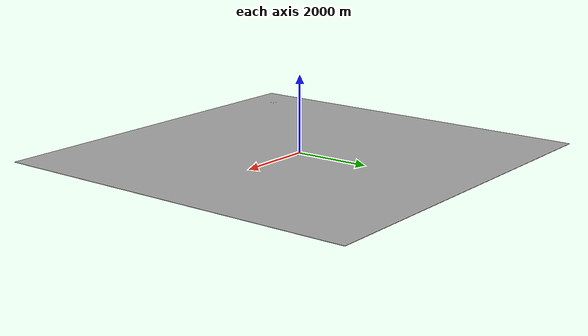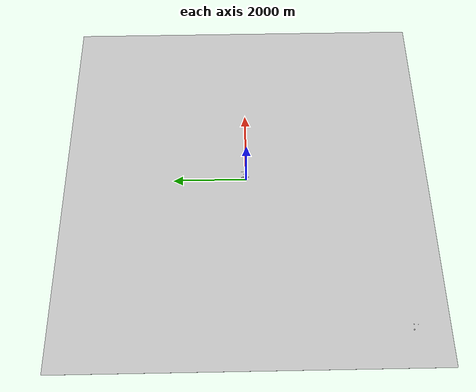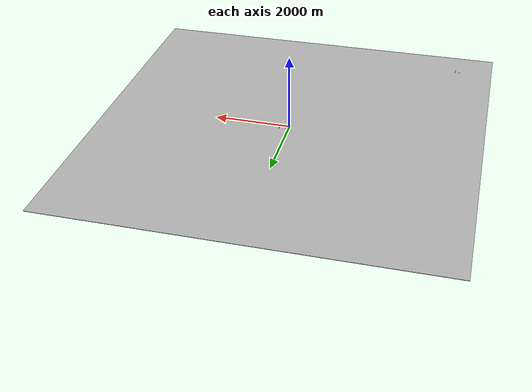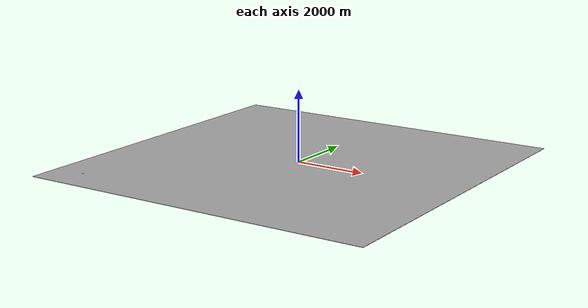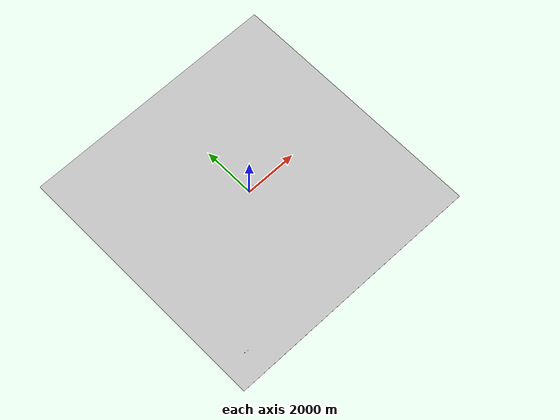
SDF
<sdf version="1.4">
 <world name="zelyn_world">
  <include><uri>model://sun</uri></include>
  <scene>
   <ambient>0.45 0.45 0.45 1</ambient>
   <background>0.65 0.80 1.0 1</background>
   <shadows>true</shadows>
   <sky>
    <time>12</time>
    <clouds>
     <enable>1</enable>
     <speed>0.6</speed>
     <direction>0</direction>
     <humidity>0.2</humidity>
     <mean_size>0.5</mean_size>
    </clouds>
   </sky>
  </scene>
  <physics name="default_physics" default="0" type="ode">
   <gravity>0 0 -9.8066</gravity>
   <ode>
    <solver>
     <type>quick</type>
     <iters>10</iters>
     <sor>1.3</sor>
     <use_dynamic_moi_rescaling>0</use_dynamic_moi_rescaling>
    </solver>
    <constraints>
     <cfm>0</cfm>
     <erp>0.2</erp>
     <contact_max_correcting_vel>100</contact_max_correcting_vel>
     <contact_surface_layer>0.001</contact_surface_layer>
    </constraints>
   </ode>
   <max_step_size>0.004</max_step_size>
   <real_time_factor>1</real_time_factor>
   <real_time_update_rate>250</real_time_update_rate>
   <magnetic_field>6.0e-6 2.3e-5 -4.2e-5</magnetic_field>
  </physics>
  <include><uri>model://zelyn_ground</uri></include>
  <spherical_coordinates>
   <surface_model>EARTH_WGS84</surface_model>
   <latitude_deg>40.39827777777778</latitude_deg>
   <longitude_deg>109.51380555555555</longitude_deg>
   <elevation>9.0</elevation>
   <heading_deg>0</heading_deg>
  </spherical_coordinates>
  <model name="house_1_1">
   <static>1</static>
   <link name="link">
    <collision name="collision">
     <geometry><mesh><uri>model://house_1/meshes/house_1.dae</uri><scale>2.2 2.2 2.2</scale></mesh></geometry>
    </collision>
    <visual name="visual">
     <geometry><mesh><uri>model://house_1/meshes/house_1.dae</uri><scale>2.2 2.2 2.2</scale></mesh></geometry>
     <material>
      <script>
       <uri>model://house_1/materials/scripts</uri>
       <uri>model://house_1/materials/textures</uri>
       <name>House_1/Diffuse</name>
      </script>
      <shader type="normal_map_tangent_space"><normal_map>House_1_Normal.png</normal_map></shader>
     </material>
    </visual>
   </link>
   <pose>101.74 90.76 0 0 0 -1.57</pose>
  </model>
  <model name="house_1_2">
   <static>1</static>
   <link name="link">
    <collision name="collision">
     <geometry><mesh><uri>model://house_1/meshes/house_1.dae</uri><scale>2.2 2.2 2.2</scale></mesh></geometry>
    </collision>
    <visual name="visual">
     <geometry><mesh><uri>model://house_1/meshes/house_1.dae</uri><scale>2.2 2.2 2.2</scale></mesh></geometry>
     <material>
      <script>
       <uri>model://house_1/materials/scripts</uri>
       <uri>model://house_1/materials/textures</uri>
       <name>House_1/Diffuse</name>
      </script>
      <shader type="normal_map_tangent_space"><normal_map>House_1_Normal.png</normal_map></shader>
     </material>
    </visual>
   </link>
   <pose>246.62 127.93 0 0 -0 3.14</pose>
  </model>
  <model name="house_3_1">
   <static>1</static>
   <link name="link">
    <collision name="collision">
     <geometry><mesh><uri>model://house_3/meshes/house_3.dae</uri><scale>2.2 2.2 2.2</scale></mesh></geometry>
    </collision>
    <visual name="visual">
     <geometry><mesh><uri>model://house_3/meshes/house_3.dae</uri><scale>2.2 2.2 2.2</scale></mesh></geometry>
     <material>
      <script>
       <uri>model://house_3/materials/scripts</uri>
       <uri>model://house_3/materials/textures</uri>
       <uri>model://house_1/materials/textures</uri>
       <name>House_3/Diffuse</name>
      </script>
      <shader type="normal_map_tangent_space">
       <normal_map>model://house_1/materials/textures/House_1_Normal.png</normal_map>
      </shader>
     </material>
    </visual>
   </link>
   <pose>246.43 84.14 0 0 -0 0</pose>
  </model>
  <model name="house_2_1">
   <static>1</static>
   <link name="link">
    <collision name="collision">
     <geometry><mesh><uri>model://house_2/meshes/house_2.dae</uri><scale>2.2 2.2 2.2</scale></mesh></geometry>
    </collision>
    <visual name="visual">
     <geometry><mesh><uri>model://house_2/meshes/house_2.dae</uri><scale>2.2 2.2 2.2</scale></mesh></geometry>
     <material>
      <script>
       <uri>model://house_2/materials/scripts</uri>
       <uri>model://house_2/materials/textures</uri>
       <uri>model://house_1/materials/textures</uri>
       <name>House_2/Diffuse</name>
      </script>
      <shader type="normal_map_tangent_space">
       <normal_map>model://house_1/materials/textures/House_1_Normal.png</normal_map>
      </shader>
     </material>
    </visual>
   </link>
   <pose>176.71 63.4 0 0 -0 0</pose>
  </model>
  <model name="gas_station_73">
   <static>1</static>
   <link name="link">
    <collision name="collision">
     <geometry>
      <mesh><uri>model://gas_station/meshes/gas_station.dae</uri><scale>2.2 2.2 2.2</scale></mesh>
     </geometry>
    </collision>
    <visual name="visual">
     <geometry><mesh><uri>model://gas_station/meshes/gas_station.dae</uri></mesh></geometry>
     <material>
      <script>
       <uri>model://gas_station/materials/scripts</uri>
       <uri>model://gas_station/materials/textures</uri>
       <name>GasStation/Diffuse</name>
      </script>
      <ambient>1 1 1 1</ambient>
     </material>
    </visual>
   </link>
   <pose>161.88 0.82 0 0 -0 3.14</pose>
  </model>
  <model name="fast_food_93">
   <static>1</static>
   <link name="link">
    <pose>0 0 3.15931 0 -0 0</pose>
    <collision name="collision">
     <geometry><mesh><scale>6 6 4</scale><uri>model://fast_food/meshes/fast_food.dae</uri></mesh></geometry>
    </collision>
    <visual name="visual">
     <geometry><mesh><scale>6 6 4</scale><uri>model://fast_food/meshes/fast_food.dae</uri></mesh></geometry>
     <material>
      <script>
       <uri>model://fast_food/materials/scripts</uri>
       <uri>model://fast_food/materials/textures</uri>
       <name>FastFood/Diffuse</name>
      </script>
      <shader type="normal_map_tangent_space"><normal_map>FastFood_Normal.png</normal_map></shader>
     </material>
    </visual>
   </link>
   <pose>88.25 -55.93 0 0 -0 0</pose>
  </model>
  <model name="house_2_125">
   <static>1</static>
   <link name="link">
    <collision name="collision">
     <geometry><mesh><uri>model://house_2/meshes/house_2.dae</uri><scale>2.2 2.2 2.2</scale></mesh></geometry>
    </collision>
    <visual name="visual">
     <geometry><mesh><uri>model://house_2/meshes/house_2.dae</uri><scale>2.2 2.2 2.2</scale></mesh></geometry>
     <material>
      <script>
       <uri>model://house_2/materials/scripts</uri>
       <uri>model://house_2/materials/textures</uri>
       <uri>model://house_1/materials/textures</uri>
       <name>House_2/Diffuse</name>
      </script>
      <shader type="normal_map_tangent_space">
       <normal_map>model://house_1/materials/textures/House_1_Normal.png</normal_map>
      </shader>
     </material>
    </visual>
   </link>
   <pose>1.61 86.15 0 0 -0 3.14</pose>
  </model>
  <model name="house_2_126">
   <static>1</static>
   <link name="link">
    <collision name="collision">
     <geometry><mesh><uri>model://house_2/meshes/house_2.dae</uri><scale>2.2 2.2 2.2</scale></mesh></geometry>
    </collision>
    <visual name="visual">
     <geometry><mesh><uri>model://house_2/meshes/house_2.dae</uri><scale>2.2 2.2 2.2</scale></mesh></geometry>
     <material>
      <script>
       <uri>model://house_2/materials/scripts</uri>
       <uri>model://house_2/materials/textures</uri>
       <uri>model://house_1/materials/textures</uri>
       <name>House_2/Diffuse</name>
      </script>
      <shader type="normal_map_tangent_space">
       <normal_map>model://house_1/materials/textures/House_1_Normal.png</normal_map>
      </shader>
     </material>
    </visual>
   </link>
   <pose>100.59 74.6 0 0 0 -1.57</pose>
  </model>
  <model name="house_1_146">
   <static>1</static>
   <link name="link">
    <collision name="collision">
     <geometry><mesh><uri>model://house_1/meshes/house_1.dae</uri><scale>2.2 2.2 2.2</scale></mesh></geometry>
    </collision>
    <visual name="visual">
     <geometry><mesh><uri>model://house_1/meshes/house_1.dae</uri><scale>2.2 2.2 2.2</scale></mesh></geometry>
     <material>
      <script>
       <uri>model://house_1/materials/scripts</uri>
       <uri>model://house_1/materials/textures</uri>
       <name>House_1/Diffuse</name>
      </script>
      <shader type="normal_map_tangent_space"><normal_map>House_1_Normal.png</normal_map></shader>
     </material>
    </visual>
   </link>
   <pose>73.49 125.344 0 0 0 -1.57</pose>
  </model>
  <model name="house_3_156">
   <static>1</static>
   <link name="link">
    <collision name="collision">
     <geometry><mesh><uri>model://house_3/meshes/house_3.dae</uri><scale>2.2 2.2 2.2</scale></mesh></geometry>
    </collision>
    <visual name="visual">
     <geometry><mesh><uri>model://house_3/meshes/house_3.dae</uri><scale>2.2 2.2 2.2</scale></mesh></geometry>
     <material>
      <script>
       <uri>model://house_3/materials/scripts</uri>
       <uri>model://house_3/materials/textures</uri>
       <uri>model://house_1/materials/textures</uri>
       <name>House_3/Diffuse</name>
      </script>
      <shader type="normal_map_tangent_space">
       <normal_map>model://house_1/materials/textures/House_1_Normal.png</normal_map>
      </shader>
     </material>
    </visual>
   </link>
   <pose>67.39 79.3 0 0 0 -1.57</pose>
  </model>
  <model name="house_3_157">
   <static>1</static>
   <link name="link">
    <collision name="collision">
     <geometry><mesh><uri>model://house_3/meshes/house_3.dae</uri><scale>2.2 2.2 2.2</scale></mesh></geometry>
    </collision>
    <visual name="visual">
     <geometry><mesh><uri>model://house_3/meshes/house_3.dae</uri><scale>2.2 2.2 2.2</scale></mesh></geometry>
     <material>
      <script>
       <uri>model://house_3/materials/scripts</uri>
       <uri>model://house_3/materials/textures</uri>
       <uri>model://house_1/materials/textures</uri>
       <name>House_3/Diffuse</name>
      </script>
      <shader type="normal_map_tangent_space">
       <normal_map>model://house_1/materials/textures/House_1_Normal.png</normal_map>
      </shader>
     </material>
    </visual>
   </link>
   <pose>72.126 68.93 0 0 -0 0</pose>
  </model>
  <model name="house_3_158">
   <static>1</static>
   <link name="link">
    <collision name="collision">
     <geometry><mesh><uri>model://house_3/meshes/house_3.dae</uri><scale>2.2 2.2 2.2</scale></mesh></geometry>
    </collision>
    <visual name="visual">
     <geometry><mesh><uri>model://house_3/meshes/house_3.dae</uri><scale>2.2 2.2 2.2</scale></mesh></geometry>
     <material>
      <script>
       <uri>model://house_3/materials/scripts</uri>
       <uri>model://house_3/materials/textures</uri>
       <uri>model://house_1/materials/textures</uri>
       <name>House_3/Diffuse</name>
      </script>
      <shader type="normal_map_tangent_space">
       <normal_map>model://house_1/materials/textures/House_1_Normal.png</normal_map>
      </shader>
     </material>
    </visual>
   </link>
   <pose>65.739 81.38 0 0 -0 1.57</pose>
  </model>
  <model name="ground_plane">
   <static>true</static>
   <link name="link">
    <collision name="collision">
     <geometry><plane><normal>0 0 1</normal><size>10000 10000</size></plane></geometry>
     <friction><ode><mu>100</mu><mu2>50</mu2></ode></friction>
    </collision>
   </link>
  </model>
  <model name="runway_plane">
   <static>1</static>
   <pose>-4014 -4100 0.1 0 -0 11.81</pose>
   <link name="link">
    <visual name="runway">
     <cast_shadows>false</cast_shadows>
     <geometry><plane><normal>0 0 1</normal><size>1300 25</size></plane></geometry>
     <material>
      <script><uri>file://media/materials/scripts/gazebo.material</uri><name>Gazebo/Runway</name></script>
     </material>
    </visual>
   </link>
  </model>
  <model name="house_2_11">
   <static>1</static>
   <link name="link">
    <collision name="collision">
     <geometry><mesh><uri>model://house_2/meshes/house_2.dae</uri><scale>2.2 2.2 2.2</scale></mesh></geometry>
    </collision>
    <visual name="visual">
     <geometry><mesh><uri>model://house_2/meshes/house_2.dae</uri><scale>2.2 2.2 2.2</scale></mesh></geometry>
     <material>
      <script>
       <uri>model://house_2/materials/scripts</uri>
       <uri>model://house_2/materials/textures</uri>
       <uri>model://house_1/materials/textures</uri>
       <name>House_2/Diffuse</name>
      </script>
      <shader type="normal_map_tangent_space">
       <normal_map>model://house_1/materials/textures/House_1_Normal.png</normal_map>
      </shader>
     </material>
    </visual>
   </link>
   <pose>-3973 -4085 0 0 -0 0</pose>
  </model>
  <model name="house_2_122">
   <static>1</static>
   <link name="link">
    <collision name="collision">
     <geometry><mesh><uri>model://house_2/meshes/house_2.dae</uri><scale>2.2 2.2 2.2</scale></mesh></geometry>
    </collision>
    <visual name="visual">
     <geometry><mesh><uri>model://house_2/meshes/house_2.dae</uri><scale>2.2 2.2 2.2</scale></mesh></geometry>
     <material>
      <script>
       <uri>model://house_2/materials/scripts</uri>
       <uri>model://house_2/materials/textures</uri>
       <uri>model://house_1/materials/textures</uri>
       <name>House_2/Diffuse</name>
      </script>
      <shader type="normal_map_tangent_space">
       <normal_map>model://house_1/materials/textures/House_1_Normal.png</normal_map>
      </shader>
     </material>
    </visual>
   </link>
   <pose>-3974.61 -4186.15 0 0 -0 3.14</pose>
  </model>
  <model name="fast_food_94">
   <static>1</static>
   <link name="link">
    <pose>0 0 3.15931 0 -0 0</pose>
    <collision name="collision">
     <geometry><mesh><scale>6 6 4</scale><uri>model://fast_food/meshes/fast_food.dae</uri></mesh></geometry>
    </collision>
    <visual name="visual">
     <geometry><mesh><scale>6 6 4</scale><uri>model://fast_food/meshes/fast_food.dae</uri></mesh></geometry>
     <material>
      <script>
       <uri>model://fast_food/materials/scripts</uri>
       <uri>model://fast_food/materials/textures</uri>
       <name>FastFood/Diffuse</name>
      </script>
      <shader type="normal_map_tangent_space"><normal_map>FastFood_Normal.png</normal_map></shader>
     </material>
    </visual>
   </link>
   <pose>-4095.58 -4075.8 0 0 -0 0</pose>
  </model>
  <model name="gas_station_72">
   <static>1</static>
   <link name="link">
    <collision name="collision">
     <geometry>
      <mesh><uri>model://gas_station/meshes/gas_station.dae</uri><scale>2.2 2.2 2.2</scale></mesh>
     </geometry>
    </collision>
    <visual name="visual">
     <geometry><mesh><uri>model://gas_station/meshes/gas_station.dae</uri></mesh></geometry>
     <material>
      <script>
       <uri>model://gas_station/materials/scripts</uri>
       <uri>model://gas_station/materials/textures</uri>
       <name>GasStation/Diffuse</name>
      </script>
      <ambient>1 1 1 1</ambient>
     </material>
    </visual>
   </link>
   <pose>-4100.88 -3950.82 0 0 0 0.80</pose>
  </model>
 </world>
</sdf>

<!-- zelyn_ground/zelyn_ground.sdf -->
<sdf version="1.4">

<model name="zelyn_ground">
  <static>true</static>
  <link name="zelyn_ground_link">
      <collision name="collision">
        <geometry>
          <box>
            <size>10000 10000 .1</size>
          </box>
        </geometry>
      </collision>
  <visual name="zelyn_ground_visual1">
    <pose>0 0 0 0 0 0</pose>
    <geometry>
      <plane>
        <normal>0 0 1</normal>
        <size>10000 10000</size>
      </plane>
      <mesh>
        <uri>model://zelyn_ground/zelyn_ground.dae</uri>
        <scale>1 1 1</scale>
      </mesh>
    </geometry>
    <material>
	      <script>
          <uri>model://zelyn_ground/materials/scripts</uri>
          <uri>model://zelyn_ground/materials/textures</uri>
          <name>vrc/task_map</name>
        </script>
    </material>
  </visual>

  </link>
</model>
</sdf>
